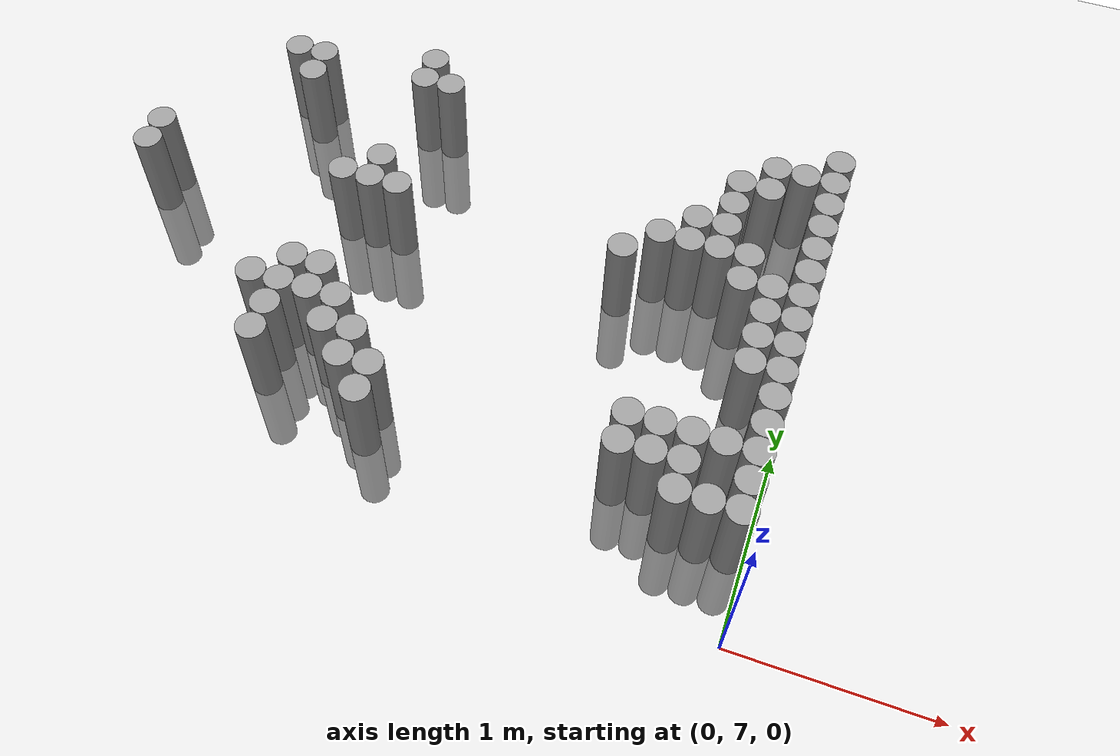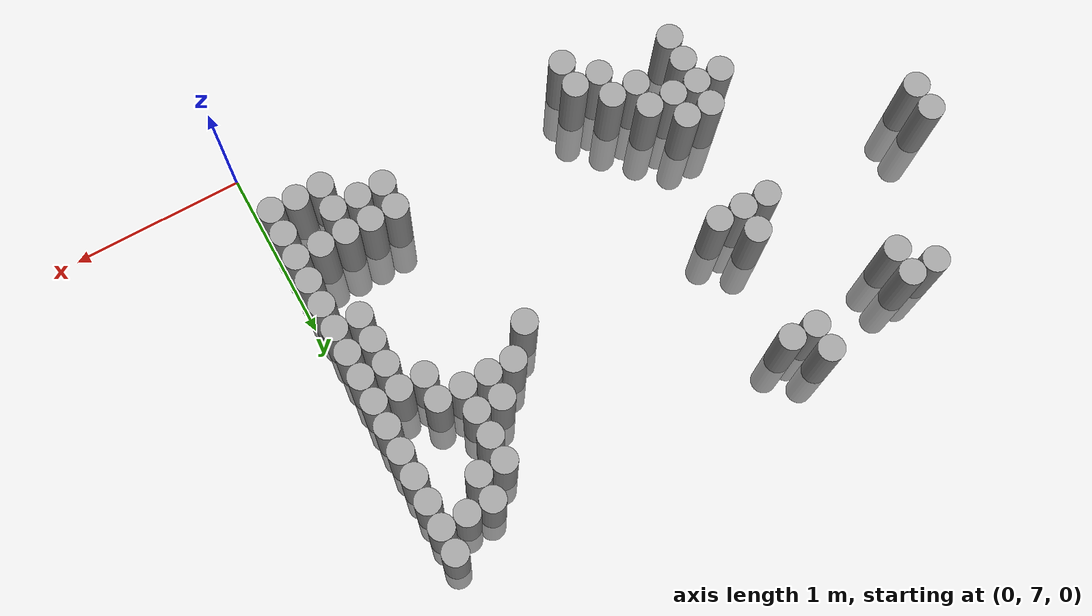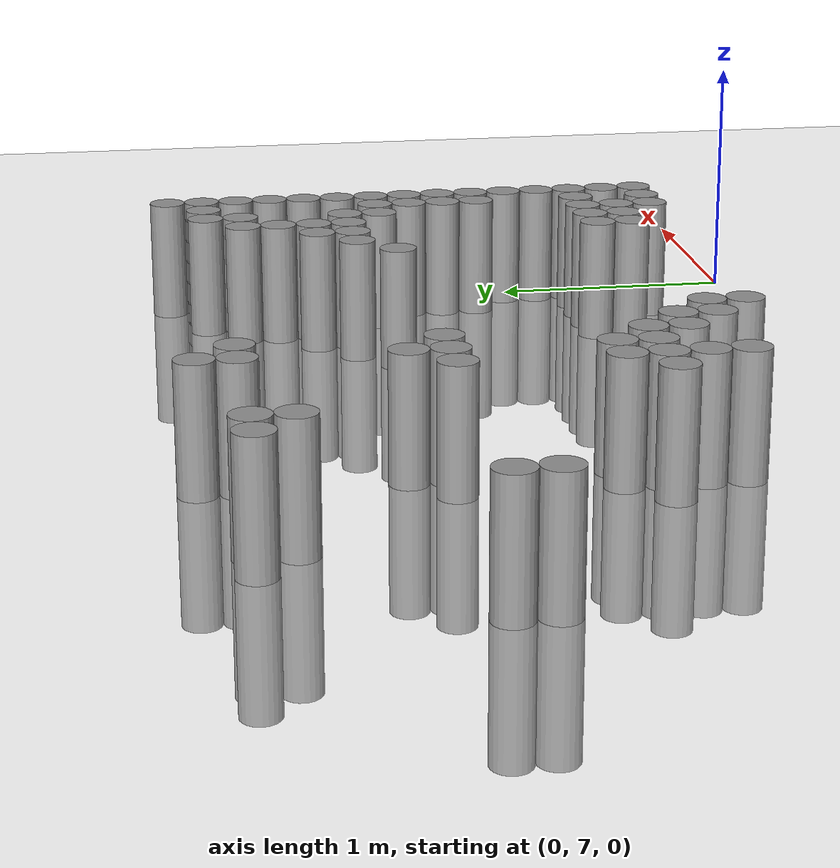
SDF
<sdf version="1.6">
 <world name="default">
  <model name="ground_plane">
   <static>1</static>
   <link name="link">
    <collision name="collision">
     <geometry><plane><normal>0 0 1</normal><size>100 100</size></plane></geometry>
     <surface><friction><ode><mu>100</mu><mu2>50</mu2></ode></friction></surface>
    </collision>
    <visual name="visual">
     <cast_shadows>0</cast_shadows>
     <geometry><plane><normal>0 0 1</normal><size>100 100</size></plane></geometry>
     <material>
      <script><uri>file://media/materials/scripts/gazebo.material</uri><name>Gazebo/Grey</name></script>
     </material>
    </visual>
   </link>
  </model>
  <model name="unit_cylinder_180">
   <pose>-3.525000 8.475000 0.000000 0.000000 0.000000 0.000000</pose>
   <link name="link">
    <inertial>
     <mass>1</mass>
     <inertia><ixx>0.145833</ixx><ixy>0</ixy><ixz>0</ixz><iyy>0.145833</iyy><iyz>0</iyz><izz>0.125</izz></inertia>
    </inertial>
    <collision name="collision">
     <geometry><cylinder><radius>0.075000</radius><length>1</length></cylinder></geometry>
    </collision>
    <visual name="visual">
     <geometry><cylinder><radius>0.075000</radius><length>1</length></cylinder></geometry>
     <material>
      <script><name>Gazebo/Grey</name><uri>file://media/materials/scripts/gazebo.material</uri></script>
     </material>
    </visual>
   </link>
  </model>
  <model name="unit_cylinder_181">
   <pose>-3.525000 8.625000 0.000000 0.000000 0.000000 0.000000</pose>
   <link name="link">
    <inertial>
     <mass>1</mass>
     <inertia><ixx>0.145833</ixx><ixy>0</ixy><ixz>0</ixz><iyy>0.145833</iyy><iyz>0</iyz><izz>0.125</izz></inertia>
    </inertial>
    <collision name="collision">
     <geometry><cylinder><radius>0.075000</radius><length>1</length></cylinder></geometry>
    </collision>
    <visual name="visual">
     <geometry><cylinder><radius>0.075000</radius><length>1</length></cylinder></geometry>
     <material>
      <script><name>Gazebo/Grey</name><uri>file://media/materials/scripts/gazebo.material</uri></script>
     </material>
    </visual>
   </link>
  </model>
  <model name="unit_cylinder_197">
   <pose>-3.075000 9.375000 0.000000 0.000000 0.000000 0.000000</pose>
   <link name="link">
    <inertial>
     <mass>1</mass>
     <inertia><ixx>0.145833</ixx><ixy>0</ixy><ixz>0</ixz><iyy>0.145833</iyy><iyz>0</iyz><izz>0.125</izz></inertia>
    </inertial>
    <collision name="collision">
     <geometry><cylinder><radius>0.075000</radius><length>1</length></cylinder></geometry>
    </collision>
    <visual name="visual">
     <geometry><cylinder><radius>0.075000</radius><length>1</length></cylinder></geometry>
     <material>
      <script><name>Gazebo/Grey</name><uri>file://media/materials/scripts/gazebo.material</uri></script>
     </material>
    </visual>
   </link>
  </model>
  <model name="unit_cylinder_206">
   <pose>-2.925000 9.225000 0.000000 0.000000 0.000000 0.000000</pose>
   <link name="link">
    <inertial>
     <mass>1</mass>
     <inertia><ixx>0.145833</ixx><ixy>0</ixy><ixz>0</ixz><iyy>0.145833</iyy><iyz>0</iyz><izz>0.125</izz></inertia>
    </inertial>
    <collision name="collision">
     <geometry><cylinder><radius>0.075000</radius><length>1</length></cylinder></geometry>
    </collision>
    <visual name="visual">
     <geometry><cylinder><radius>0.075000</radius><length>1</length></cylinder></geometry>
     <material>
      <script><name>Gazebo/Grey</name><uri>file://media/materials/scripts/gazebo.material</uri></script>
     </material>
    </visual>
   </link>
  </model>
  <model name="unit_cylinder_207">
   <pose>-2.925000 9.375000 0.000000 0.000000 0.000000 0.000000</pose>
   <link name="link">
    <inertial>
     <mass>1</mass>
     <inertia><ixx>0.145833</ixx><ixy>0</ixy><ixz>0</ixz><iyy>0.145833</iyy><iyz>0</iyz><izz>0.125</izz></inertia>
    </inertial>
    <collision name="collision">
     <geometry><cylinder><radius>0.075000</radius><length>1</length></cylinder></geometry>
    </collision>
    <visual name="visual">
     <geometry><cylinder><radius>0.075000</radius><length>1</length></cylinder></geometry>
     <material>
      <script><name>Gazebo/Grey</name><uri>file://media/materials/scripts/gazebo.material</uri></script>
     </material>
    </visual>
   </link>
  </model>
  <model name="unit_cylinder_219">
   <pose>-2.625000 7.875000 0.000000 0.000000 0.000000 0.000000</pose>
   <link name="link">
    <inertial>
     <mass>1</mass>
     <inertia><ixx>0.145833</ixx><ixy>0</ixy><ixz>0</ixz><iyy>0.145833</iyy><iyz>0</iyz><izz>0.125</izz></inertia>
    </inertial>
    <collision name="collision">
     <geometry><cylinder><radius>0.075000</radius><length>1</length></cylinder></geometry>
    </collision>
    <visual name="visual">
     <geometry><cylinder><radius>0.075000</radius><length>1</length></cylinder></geometry>
     <material>
      <script><name>Gazebo/Grey</name><uri>file://media/materials/scripts/gazebo.material</uri></script>
     </material>
    </visual>
   </link>
  </model>
  <model name="unit_cylinder_224">
   <pose>-2.475000 7.575000 0.000000 0.000000 0.000000 0.000000</pose>
   <link name="link">
    <inertial>
     <mass>1</mass>
     <inertia><ixx>0.145833</ixx><ixy>0</ixy><ixz>0</ixz><iyy>0.145833</iyy><iyz>0</iyz><izz>0.125</izz></inertia>
    </inertial>
    <collision name="collision">
     <geometry><cylinder><radius>0.075000</radius><length>1</length></cylinder></geometry>
    </collision>
    <visual name="visual">
     <geometry><cylinder><radius>0.075000</radius><length>1</length></cylinder></geometry>
     <material>
      <script><name>Gazebo/Grey</name><uri>file://media/materials/scripts/gazebo.material</uri></script>
     </material>
    </visual>
   </link>
  </model>
  <model name="unit_cylinder_225">
   <pose>-2.475000 7.725000 0.000000 0.000000 0.000000 0.000000</pose>
   <link name="link">
    <inertial>
     <mass>1</mass>
     <inertia><ixx>0.145833</ixx><ixy>0</ixy><ixz>0</ixz><iyy>0.145833</iyy><iyz>0</iyz><izz>0.125</izz></inertia>
    </inertial>
    <collision name="collision">
     <geometry><cylinder><radius>0.075000</radius><length>1</length></cylinder></geometry>
    </collision>
    <visual name="visual">
     <geometry><cylinder><radius>0.075000</radius><length>1</length></cylinder></geometry>
     <material>
      <script><name>Gazebo/Grey</name><uri>file://media/materials/scripts/gazebo.material</uri></script>
     </material>
    </visual>
   </link>
  </model>
  <model name="unit_cylinder_226">
   <pose>-2.475000 7.875000 0.000000 0.000000 0.000000 0.000000</pose>
   <link name="link">
    <inertial>
     <mass>1</mass>
     <inertia><ixx>0.145833</ixx><ixy>0</ixy><ixz>0</ixz><iyy>0.145833</iyy><iyz>0</iyz><izz>0.125</izz></inertia>
    </inertial>
    <collision name="collision">
     <geometry><cylinder><radius>0.075000</radius><length>1</length></cylinder></geometry>
    </collision>
    <visual name="visual">
     <geometry><cylinder><radius>0.075000</radius><length>1</length></cylinder></geometry>
     <material>
      <script><name>Gazebo/Grey</name><uri>file://media/materials/scripts/gazebo.material</uri></script>
     </material>
    </visual>
   </link>
  </model>
  <model name="unit_cylinder_227">
   <pose>-2.475000 8.025000 0.000000 0.000000 0.000000 0.000000</pose>
   <link name="link">
    <inertial>
     <mass>1</mass>
     <inertia><ixx>0.145833</ixx><ixy>0</ixy><ixz>0</ixz><iyy>0.145833</iyy><iyz>0</iyz><izz>0.125</izz></inertia>
    </inertial>
    <collision name="collision">
     <geometry><cylinder><radius>0.075000</radius><length>1</length></cylinder></geometry>
    </collision>
    <visual name="visual">
     <geometry><cylinder><radius>0.075000</radius><length>1</length></cylinder></geometry>
     <material>
      <script><name>Gazebo/Grey</name><uri>file://media/materials/scripts/gazebo.material</uri></script>
     </material>
    </visual>
   </link>
  </model>
  <model name="unit_cylinder_228">
   <pose>-2.475000 8.625000 0.000000 0.000000 0.000000 0.000000</pose>
   <link name="link">
    <inertial>
     <mass>1</mass>
     <inertia><ixx>0.145833</ixx><ixy>0</ixy><ixz>0</ixz><iyy>0.145833</iyy><iyz>0</iyz><izz>0.125</izz></inertia>
    </inertial>
    <collision name="collision">
     <geometry><cylinder><radius>0.075000</radius><length>1</length></cylinder></geometry>
    </collision>
    <visual name="visual">
     <geometry><cylinder><radius>0.075000</radius><length>1</length></cylinder></geometry>
     <material>
      <script><name>Gazebo/Grey</name><uri>file://media/materials/scripts/gazebo.material</uri></script>
     </material>
    </visual>
   </link>
  </model>
  <model name="unit_cylinder_230">
   <pose>-2.325000 7.875000 0.000000 0.000000 0.000000 0.000000</pose>
   <link name="link">
    <inertial>
     <mass>1</mass>
     <inertia><ixx>0.145833</ixx><ixy>0</ixy><ixz>0</ixz><iyy>0.145833</iyy><iyz>0</iyz><izz>0.125</izz></inertia>
    </inertial>
    <collision name="collision">
     <geometry><cylinder><radius>0.075000</radius><length>1</length></cylinder></geometry>
    </collision>
    <visual name="visual">
     <geometry><cylinder><radius>0.075000</radius><length>1</length></cylinder></geometry>
     <material>
      <script><name>Gazebo/Grey</name><uri>file://media/materials/scripts/gazebo.material</uri></script>
     </material>
    </visual>
   </link>
  </model>
  <model name="unit_cylinder_231">
   <pose>-2.325000 8.025000 0.000000 0.000000 0.000000 0.000000</pose>
   <link name="link">
    <inertial>
     <mass>1</mass>
     <inertia><ixx>0.145833</ixx><ixy>0</ixy><ixz>0</ixz><iyy>0.145833</iyy><iyz>0</iyz><izz>0.125</izz></inertia>
    </inertial>
    <collision name="collision">
     <geometry><cylinder><radius>0.075000</radius><length>1</length></cylinder></geometry>
    </collision>
    <visual name="visual">
     <geometry><cylinder><radius>0.075000</radius><length>1</length></cylinder></geometry>
     <material>
      <script><name>Gazebo/Grey</name><uri>file://media/materials/scripts/gazebo.material</uri></script>
     </material>
    </visual>
   </link>
  </model>
  <model name="unit_cylinder_232">
   <pose>-2.325000 8.625000 0.000000 0.000000 0.000000 0.000000</pose>
   <link name="link">
    <inertial>
     <mass>1</mass>
     <inertia><ixx>0.145833</ixx><ixy>0</ixy><ixz>0</ixz><iyy>0.145833</iyy><iyz>0</iyz><izz>0.125</izz></inertia>
    </inertial>
    <collision name="collision">
     <geometry><cylinder><radius>0.075000</radius><length>1</length></cylinder></geometry>
    </collision>
    <visual name="visual">
     <geometry><cylinder><radius>0.075000</radius><length>1</length></cylinder></geometry>
     <material>
      <script><name>Gazebo/Grey</name><uri>file://media/materials/scripts/gazebo.material</uri></script>
     </material>
    </visual>
   </link>
  </model>
  <model name="unit_cylinder_233">
   <pose>-2.325000 8.775000 0.000000 0.000000 0.000000 0.000000</pose>
   <link name="link">
    <inertial>
     <mass>1</mass>
     <inertia><ixx>0.145833</ixx><ixy>0</ixy><ixz>0</ixz><iyy>0.145833</iyy><iyz>0</iyz><izz>0.125</izz></inertia>
    </inertial>
    <collision name="collision">
     <geometry><cylinder><radius>0.075000</radius><length>1</length></cylinder></geometry>
    </collision>
    <visual name="visual">
     <geometry><cylinder><radius>0.075000</radius><length>1</length></cylinder></geometry>
     <material>
      <script><name>Gazebo/Grey</name><uri>file://media/materials/scripts/gazebo.material</uri></script>
     </material>
    </visual>
   </link>
  </model>
  <model name="unit_cylinder_234">
   <pose>-2.325000 9.375000 0.000000 0.000000 0.000000 0.000000</pose>
   <link name="link">
    <inertial>
     <mass>1</mass>
     <inertia><ixx>0.145833</ixx><ixy>0</ixy><ixz>0</ixz><iyy>0.145833</iyy><iyz>0</iyz><izz>0.125</izz></inertia>
    </inertial>
    <collision name="collision">
     <geometry><cylinder><radius>0.075000</radius><length>1</length></cylinder></geometry>
    </collision>
    <visual name="visual">
     <geometry><cylinder><radius>0.075000</radius><length>1</length></cylinder></geometry>
     <material>
      <script><name>Gazebo/Grey</name><uri>file://media/materials/scripts/gazebo.material</uri></script>
     </material>
    </visual>
   </link>
  </model>
  <model name="unit_cylinder_235">
   <pose>-2.325000 9.525000 0.000000 0.000000 0.000000 0.000000</pose>
   <link name="link">
    <inertial>
     <mass>1</mass>
     <inertia><ixx>0.145833</ixx><ixy>0</ixy><ixz>0</ixz><iyy>0.145833</iyy><iyz>0</iyz><izz>0.125</izz></inertia>
    </inertial>
    <collision name="collision">
     <geometry><cylinder><radius>0.075000</radius><length>1</length></cylinder></geometry>
    </collision>
    <visual name="visual">
     <geometry><cylinder><radius>0.075000</radius><length>1</length></cylinder></geometry>
     <material>
      <script><name>Gazebo/Grey</name><uri>file://media/materials/scripts/gazebo.material</uri></script>
     </material>
    </visual>
   </link>
  </model>
  <model name="unit_cylinder_238">
   <pose>-2.175000 7.725000 0.000000 0.000000 0.000000 0.000000</pose>
   <link name="link">
    <inertial>
     <mass>1</mass>
     <inertia><ixx>0.145833</ixx><ixy>0</ixy><ixz>0</ixz><iyy>0.145833</iyy><iyz>0</iyz><izz>0.125</izz></inertia>
    </inertial>
    <collision name="collision">
     <geometry><cylinder><radius>0.075000</radius><length>1</length></cylinder></geometry>
    </collision>
    <visual name="visual">
     <geometry><cylinder><radius>0.075000</radius><length>1</length></cylinder></geometry>
     <material>
      <script><name>Gazebo/Grey</name><uri>file://media/materials/scripts/gazebo.material</uri></script>
     </material>
    </visual>
   </link>
  </model>
  <model name="unit_cylinder_239">
   <pose>-2.175000 7.875000 0.000000 0.000000 0.000000 0.000000</pose>
   <link name="link">
    <inertial>
     <mass>1</mass>
     <inertia><ixx>0.145833</ixx><ixy>0</ixy><ixz>0</ixz><iyy>0.145833</iyy><iyz>0</iyz><izz>0.125</izz></inertia>
    </inertial>
    <collision name="collision">
     <geometry><cylinder><radius>0.075000</radius><length>1</length></cylinder></geometry>
    </collision>
    <visual name="visual">
     <geometry><cylinder><radius>0.075000</radius><length>1</length></cylinder></geometry>
     <material>
      <script><name>Gazebo/Grey</name><uri>file://media/materials/scripts/gazebo.material</uri></script>
     </material>
    </visual>
   </link>
  </model>
  <model name="unit_cylinder_240">
   <pose>-2.175000 8.625000 0.000000 0.000000 0.000000 0.000000</pose>
   <link name="link">
    <inertial>
     <mass>1</mass>
     <inertia><ixx>0.145833</ixx><ixy>0</ixy><ixz>0</ixz><iyy>0.145833</iyy><iyz>0</iyz><izz>0.125</izz></inertia>
    </inertial>
    <collision name="collision">
     <geometry><cylinder><radius>0.075000</radius><length>1</length></cylinder></geometry>
    </collision>
    <visual name="visual">
     <geometry><cylinder><radius>0.075000</radius><length>1</length></cylinder></geometry>
     <material>
      <script><name>Gazebo/Grey</name><uri>file://media/materials/scripts/gazebo.material</uri></script>
     </material>
    </visual>
   </link>
  </model>
  <model name="unit_cylinder_241">
   <pose>-2.175000 9.375000 0.000000 0.000000 0.000000 0.000000</pose>
   <link name="link">
    <inertial>
     <mass>1</mass>
     <inertia><ixx>0.145833</ixx><ixy>0</ixy><ixz>0</ixz><iyy>0.145833</iyy><iyz>0</iyz><izz>0.125</izz></inertia>
    </inertial>
    <collision name="collision">
     <geometry><cylinder><radius>0.075000</radius><length>1</length></cylinder></geometry>
    </collision>
    <visual name="visual">
     <geometry><cylinder><radius>0.075000</radius><length>1</length></cylinder></geometry>
     <material>
      <script><name>Gazebo/Grey</name><uri>file://media/materials/scripts/gazebo.material</uri></script>
     </material>
    </visual>
   </link>
  </model>
  <model name="unit_cylinder_243">
   <pose>-2.025000 7.575000 0.000000 0.000000 0.000000 0.000000</pose>
   <link name="link">
    <inertial>
     <mass>1</mass>
     <inertia><ixx>0.145833</ixx><ixy>0</ixy><ixz>0</ixz><iyy>0.145833</iyy><iyz>0</iyz><izz>0.125</izz></inertia>
    </inertial>
    <collision name="collision">
     <geometry><cylinder><radius>0.075000</radius><length>1</length></cylinder></geometry>
    </collision>
    <visual name="visual">
     <geometry><cylinder><radius>0.075000</radius><length>1</length></cylinder></geometry>
     <material>
      <script><name>Gazebo/Grey</name><uri>file://media/materials/scripts/gazebo.material</uri></script>
     </material>
    </visual>
   </link>
  </model>
  <model name="unit_cylinder_244">
   <pose>-2.025000 7.725000 0.000000 0.000000 0.000000 0.000000</pose>
   <link name="link">
    <inertial>
     <mass>1</mass>
     <inertia><ixx>0.145833</ixx><ixy>0</ixy><ixz>0</ixz><iyy>0.145833</iyy><iyz>0</iyz><izz>0.125</izz></inertia>
    </inertial>
    <collision name="collision">
     <geometry><cylinder><radius>0.075000</radius><length>1</length></cylinder></geometry>
    </collision>
    <visual name="visual">
     <geometry><cylinder><radius>0.075000</radius><length>1</length></cylinder></geometry>
     <material>
      <script><name>Gazebo/Grey</name><uri>file://media/materials/scripts/gazebo.material</uri></script>
     </material>
    </visual>
   </link>
  </model>
  <model name="unit_cylinder_245">
   <pose>-1.875000 7.425000 0.000000 0.000000 0.000000 0.000000</pose>
   <link name="link">
    <inertial>
     <mass>1</mass>
     <inertia><ixx>0.145833</ixx><ixy>0</ixy><ixz>0</ixz><iyy>0.145833</iyy><iyz>0</iyz><izz>0.125</izz></inertia>
    </inertial>
    <collision name="collision">
     <geometry><cylinder><radius>0.075000</radius><length>1</length></cylinder></geometry>
    </collision>
    <visual name="visual">
     <geometry><cylinder><radius>0.075000</radius><length>1</length></cylinder></geometry>
     <material>
      <script><name>Gazebo/Grey</name><uri>file://media/materials/scripts/gazebo.material</uri></script>
     </material>
    </visual>
   </link>
  </model>
  <model name="unit_cylinder_246">
   <pose>-1.875000 7.575000 0.000000 0.000000 0.000000 0.000000</pose>
   <link name="link">
    <inertial>
     <mass>1</mass>
     <inertia><ixx>0.145833</ixx><ixy>0</ixy><ixz>0</ixz><iyy>0.145833</iyy><iyz>0</iyz><izz>0.125</izz></inertia>
    </inertial>
    <collision name="collision">
     <geometry><cylinder><radius>0.075000</radius><length>1</length></cylinder></geometry>
    </collision>
    <visual name="visual">
     <geometry><cylinder><radius>0.075000</radius><length>1</length></cylinder></geometry>
     <material>
      <script><name>Gazebo/Grey</name><uri>file://media/materials/scripts/gazebo.material</uri></script>
     </material>
    </visual>
   </link>
  </model>
  <model name="unit_cylinder_255">
   <pose>-0.975000 8.625000 0.000000 0.000000 0.000000 0.000000</pose>
   <link name="link">
    <inertial>
     <mass>1</mass>
     <inertia><ixx>0.145833</ixx><ixy>0</ixy><ixz>0</ixz><iyy>0.145833</iyy><iyz>0</iyz><izz>0.125</izz></inertia>
    </inertial>
    <collision name="collision">
     <geometry><cylinder><radius>0.075000</radius><length>1</length></cylinder></geometry>
    </collision>
    <visual name="visual">
     <geometry><cylinder><radius>0.075000</radius><length>1</length></cylinder></geometry>
     <material>
      <script><name>Gazebo/Grey</name><uri>file://media/materials/scripts/gazebo.material</uri></script>
     </material>
    </visual>
   </link>
  </model>
  <model name="unit_cylinder_257">
   <pose>-0.825000 8.775000 0.000000 0.000000 0.000000 0.000000</pose>
   <link name="link">
    <inertial>
     <mass>1</mass>
     <inertia><ixx>0.145833</ixx><ixy>0</ixy><ixz>0</ixz><iyy>0.145833</iyy><iyz>0</iyz><izz>0.125</izz></inertia>
    </inertial>
    <collision name="collision">
     <geometry><cylinder><radius>0.075000</radius><length>1</length></cylinder></geometry>
    </collision>
    <visual name="visual">
     <geometry><cylinder><radius>0.075000</radius><length>1</length></cylinder></geometry>
     <material>
      <script><name>Gazebo/Grey</name><uri>file://media/materials/scripts/gazebo.material</uri></script>
     </material>
    </visual>
   </link>
  </model>
  <model name="unit_cylinder_259">
   <pose>-0.675000 7.575000 0.000000 0.000000 0.000000 0.000000</pose>
   <link name="link">
    <inertial>
     <mass>1</mass>
     <inertia><ixx>0.145833</ixx><ixy>0</ixy><ixz>0</ixz><iyy>0.145833</iyy><iyz>0</iyz><izz>0.125</izz></inertia>
    </inertial>
    <collision name="collision">
     <geometry><cylinder><radius>0.075000</radius><length>1</length></cylinder></geometry>
    </collision>
    <visual name="visual">
     <geometry><cylinder><radius>0.075000</radius><length>1</length></cylinder></geometry>
     <material>
      <script><name>Gazebo/Grey</name><uri>file://media/materials/scripts/gazebo.material</uri></script>
     </material>
    </visual>
   </link>
  </model>
  <model name="unit_cylinder_260">
   <pose>-0.675000 7.725000 0.000000 0.000000 0.000000 0.000000</pose>
   <link name="link">
    <inertial>
     <mass>1</mass>
     <inertia><ixx>0.145833</ixx><ixy>0</ixy><ixz>0</ixz><iyy>0.145833</iyy><iyz>0</iyz><izz>0.125</izz></inertia>
    </inertial>
    <collision name="collision">
     <geometry><cylinder><radius>0.075000</radius><length>1</length></cylinder></geometry>
    </collision>
    <visual name="visual">
     <geometry><cylinder><radius>0.075000</radius><length>1</length></cylinder></geometry>
     <material>
      <script><name>Gazebo/Grey</name><uri>file://media/materials/scripts/gazebo.material</uri></script>
     </material>
    </visual>
   </link>
  </model>
  <model name="unit_cylinder_261">
   <pose>-0.675000 8.775000 0.000000 0.000000 0.000000 0.000000</pose>
   <link name="link">
    <inertial>
     <mass>1</mass>
     <inertia><ixx>0.145833</ixx><ixy>0</ixy><ixz>0</ixz><iyy>0.145833</iyy><iyz>0</iyz><izz>0.125</izz></inertia>
    </inertial>
    <collision name="collision">
     <geometry><cylinder><radius>0.075000</radius><length>1</length></cylinder></geometry>
    </collision>
    <visual name="visual">
     <geometry><cylinder><radius>0.075000</radius><length>1</length></cylinder></geometry>
     <material>
      <script><name>Gazebo/Grey</name><uri>file://media/materials/scripts/gazebo.material</uri></script>
     </material>
    </visual>
   </link>
  </model>
  <model name="unit_cylinder_262">
   <pose>-0.675000 8.925000 0.000000 0.000000 0.000000 0.000000</pose>
   <link name="link">
    <inertial>
     <mass>1</mass>
     <inertia><ixx>0.145833</ixx><ixy>0</ixy><ixz>0</ixz><iyy>0.145833</iyy><iyz>0</iyz><izz>0.125</izz></inertia>
    </inertial>
    <collision name="collision">
     <geometry><cylinder><radius>0.075000</radius><length>1</length></cylinder></geometry>
    </collision>
    <visual name="visual">
     <geometry><cylinder><radius>0.075000</radius><length>1</length></cylinder></geometry>
     <material>
      <script><name>Gazebo/Grey</name><uri>file://media/materials/scripts/gazebo.material</uri></script>
     </material>
    </visual>
   </link>
  </model>
  <model name="unit_cylinder_267">
   <pose>-0.525000 7.575000 0.000000 0.000000 0.000000 0.000000</pose>
   <link name="link">
    <inertial>
     <mass>1</mass>
     <inertia><ixx>0.145833</ixx><ixy>0</ixy><ixz>0</ixz><iyy>0.145833</iyy><iyz>0</iyz><izz>0.125</izz></inertia>
    </inertial>
    <collision name="collision">
     <geometry><cylinder><radius>0.075000</radius><length>1</length></cylinder></geometry>
    </collision>
    <visual name="visual">
     <geometry><cylinder><radius>0.075000</radius><length>1</length></cylinder></geometry>
     <material>
      <script><name>Gazebo/Grey</name><uri>file://media/materials/scripts/gazebo.material</uri></script>
     </material>
    </visual>
   </link>
  </model>
  <model name="unit_cylinder_268">
   <pose>-0.525000 7.725000 0.000000 0.000000 0.000000 0.000000</pose>
   <link name="link">
    <inertial>
     <mass>1</mass>
     <inertia><ixx>0.145833</ixx><ixy>0</ixy><ixz>0</ixz><iyy>0.145833</iyy><iyz>0</iyz><izz>0.125</izz></inertia>
    </inertial>
    <collision name="collision">
     <geometry><cylinder><radius>0.075000</radius><length>1</length></cylinder></geometry>
    </collision>
    <visual name="visual">
     <geometry><cylinder><radius>0.075000</radius><length>1</length></cylinder></geometry>
     <material>
      <script><name>Gazebo/Grey</name><uri>file://media/materials/scripts/gazebo.material</uri></script>
     </material>
    </visual>
   </link>
  </model>
  <model name="unit_cylinder_269">
   <pose>-0.525000 8.775000 0.000000 0.000000 0.000000 0.000000</pose>
   <link name="link">
    <inertial>
     <mass>1</mass>
     <inertia><ixx>0.145833</ixx><ixy>0</ixy><ixz>0</ixz><iyy>0.145833</iyy><iyz>0</iyz><izz>0.125</izz></inertia>
    </inertial>
    <collision name="collision">
     <geometry><cylinder><radius>0.075000</radius><length>1</length></cylinder></geometry>
    </collision>
    <visual name="visual">
     <geometry><cylinder><radius>0.075000</radius><length>1</length></cylinder></geometry>
     <material>
      <script><name>Gazebo/Grey</name><uri>file://media/materials/scripts/gazebo.material</uri></script>
     </material>
    </visual>
   </link>
  </model>
  <model name="unit_cylinder_270">
   <pose>-0.525000 8.925000 0.000000 0.000000 0.000000 0.000000</pose>
   <link name="link">
    <inertial>
     <mass>1</mass>
     <inertia><ixx>0.145833</ixx><ixy>0</ixy><ixz>0</ixz><iyy>0.145833</iyy><iyz>0</iyz><izz>0.125</izz></inertia>
    </inertial>
    <collision name="collision">
     <geometry><cylinder><radius>0.075000</radius><length>1</length></cylinder></geometry>
    </collision>
    <visual name="visual">
     <geometry><cylinder><radius>0.075000</radius><length>1</length></cylinder></geometry>
     <material>
      <script><name>Gazebo/Grey</name><uri>file://media/materials/scripts/gazebo.material</uri></script>
     </material>
    </visual>
   </link>
  </model>
  <model name="unit_cylinder_271">
   <pose>-0.525000 9.075000 0.000000 0.000000 0.000000 0.000000</pose>
   <link name="link">
    <inertial>
     <mass>1</mass>
     <inertia><ixx>0.145833</ixx><ixy>0</ixy><ixz>0</ixz><iyy>0.145833</iyy><iyz>0</iyz><izz>0.125</izz></inertia>
    </inertial>
    <collision name="collision">
     <geometry><cylinder><radius>0.075000</radius><length>1</length></cylinder></geometry>
    </collision>
    <visual name="visual">
     <geometry><cylinder><radius>0.075000</radius><length>1</length></cylinder></geometry>
     <material>
      <script><name>Gazebo/Grey</name><uri>file://media/materials/scripts/gazebo.material</uri></script>
     </material>
    </visual>
   </link>
  </model>
  <model name="unit_cylinder_272">
   <pose>-0.525000 9.225000 0.000000 0.000000 0.000000 0.000000</pose>
   <link name="link">
    <inertial>
     <mass>1</mass>
     <inertia><ixx>0.145833</ixx><ixy>0</ixy><ixz>0</ixz><iyy>0.145833</iyy><iyz>0</iyz><izz>0.125</izz></inertia>
    </inertial>
    <collision name="collision">
     <geometry><cylinder><radius>0.075000</radius><length>1</length></cylinder></geometry>
    </collision>
    <visual name="visual">
     <geometry><cylinder><radius>0.075000</radius><length>1</length></cylinder></geometry>
     <material>
      <script><name>Gazebo/Grey</name><uri>file://media/materials/scripts/gazebo.material</uri></script>
     </material>
    </visual>
   </link>
  </model>
  <model name="unit_cylinder_279">
   <pose>-0.375000 7.425000 0.000000 0.000000 0.000000 0.000000</pose>
   <link name="link">
    <inertial>
     <mass>1</mass>
     <inertia><ixx>0.145833</ixx><ixy>0</ixy><ixz>0</ixz><iyy>0.145833</iyy><iyz>0</iyz><izz>0.125</izz></inertia>
    </inertial>
    <collision name="collision">
     <geometry><cylinder><radius>0.075000</radius><length>1</length></cylinder></geometry>
    </collision>
    <visual name="visual">
     <geometry><cylinder><radius>0.075000</radius><length>1</length></cylinder></geometry>
     <material>
      <script><name>Gazebo/Grey</name><uri>file://media/materials/scripts/gazebo.material</uri></script>
     </material>
    </visual>
   </link>
  </model>
  <model name="unit_cylinder_280">
   <pose>-0.375000 7.575000 0.000000 0.000000 0.000000 0.000000</pose>
   <link name="link">
    <inertial>
     <mass>1</mass>
     <inertia><ixx>0.145833</ixx><ixy>0</ixy><ixz>0</ixz><iyy>0.145833</iyy><iyz>0</iyz><izz>0.125</izz></inertia>
    </inertial>
    <collision name="collision">
     <geometry><cylinder><radius>0.075000</radius><length>1</length></cylinder></geometry>
    </collision>
    <visual name="visual">
     <geometry><cylinder><radius>0.075000</radius><length>1</length></cylinder></geometry>
     <material>
      <script><name>Gazebo/Grey</name><uri>file://media/materials/scripts/gazebo.material</uri></script>
     </material>
    </visual>
   </link>
  </model>
  <model name="unit_cylinder_281">
   <pose>-0.375000 7.725000 0.000000 0.000000 0.000000 0.000000</pose>
   <link name="link">
    <inertial>
     <mass>1</mass>
     <inertia><ixx>0.145833</ixx><ixy>0</ixy><ixz>0</ixz><iyy>0.145833</iyy><iyz>0</iyz><izz>0.125</izz></inertia>
    </inertial>
    <collision name="collision">
     <geometry><cylinder><radius>0.075000</radius><length>1</length></cylinder></geometry>
    </collision>
    <visual name="visual">
     <geometry><cylinder><radius>0.075000</radius><length>1</length></cylinder></geometry>
     <material>
      <script><name>Gazebo/Grey</name><uri>file://media/materials/scripts/gazebo.material</uri></script>
     </material>
    </visual>
   </link>
  </model>
  <model name="unit_cylinder_282">
   <pose>-0.375000 8.625000 0.000000 0.000000 0.000000 0.000000</pose>
   <link name="link">
    <inertial>
     <mass>1</mass>
     <inertia><ixx>0.145833</ixx><ixy>0</ixy><ixz>0</ixz><iyy>0.145833</iyy><iyz>0</iyz><izz>0.125</izz></inertia>
    </inertial>
    <collision name="collision">
     <geometry><cylinder><radius>0.075000</radius><length>1</length></cylinder></geometry>
    </collision>
    <visual name="visual">
     <geometry><cylinder><radius>0.075000</radius><length>1</length></cylinder></geometry>
     <material>
      <script><name>Gazebo/Grey</name><uri>file://media/materials/scripts/gazebo.material</uri></script>
     </material>
    </visual>
   </link>
  </model>
  <model name="unit_cylinder_283">
   <pose>-0.375000 8.775000 0.000000 0.000000 0.000000 0.000000</pose>
   <link name="link">
    <inertial>
     <mass>1</mass>
     <inertia><ixx>0.145833</ixx><ixy>0</ixy><ixz>0</ixz><iyy>0.145833</iyy><iyz>0</iyz><izz>0.125</izz></inertia>
    </inertial>
    <collision name="collision">
     <geometry><cylinder><radius>0.075000</radius><length>1</length></cylinder></geometry>
    </collision>
    <visual name="visual">
     <geometry><cylinder><radius>0.075000</radius><length>1</length></cylinder></geometry>
     <material>
      <script><name>Gazebo/Grey</name><uri>file://media/materials/scripts/gazebo.material</uri></script>
     </material>
    </visual>
   </link>
  </model>
  <model name="unit_cylinder_284">
   <pose>-0.375000 9.225000 0.000000 0.000000 0.000000 0.000000</pose>
   <link name="link">
    <inertial>
     <mass>1</mass>
     <inertia><ixx>0.145833</ixx><ixy>0</ixy><ixz>0</ixz><iyy>0.145833</iyy><iyz>0</iyz><izz>0.125</izz></inertia>
    </inertial>
    <collision name="collision">
     <geometry><cylinder><radius>0.075000</radius><length>1</length></cylinder></geometry>
    </collision>
    <visual name="visual">
     <geometry><cylinder><radius>0.075000</radius><length>1</length></cylinder></geometry>
     <material>
      <script><name>Gazebo/Grey</name><uri>file://media/materials/scripts/gazebo.material</uri></script>
     </material>
    </visual>
   </link>
  </model>
  <model name="unit_cylinder_285">
   <pose>-0.375000 9.375000 0.000000 0.000000 0.000000 0.000000</pose>
   <link name="link">
    <inertial>
     <mass>1</mass>
     <inertia><ixx>0.145833</ixx><ixy>0</ixy><ixz>0</ixz><iyy>0.145833</iyy><iyz>0</iyz><izz>0.125</izz></inertia>
    </inertial>
    <collision name="collision">
     <geometry><cylinder><radius>0.075000</radius><length>1</length></cylinder></geometry>
    </collision>
    <visual name="visual">
     <geometry><cylinder><radius>0.075000</radius><length>1</length></cylinder></geometry>
     <material>
      <script><name>Gazebo/Grey</name><uri>file://media/materials/scripts/gazebo.material</uri></script>
     </material>
    </visual>
   </link>
  </model>
  <model name="unit_cylinder_292">
   <pose>-0.225000 7.425000 0.000000 0.000000 0.000000 0.000000</pose>
   <link name="link">
    <inertial>
     <mass>1</mass>
     <inertia><ixx>0.145833</ixx><ixy>0</ixy><ixz>0</ixz><iyy>0.145833</iyy><iyz>0</iyz><izz>0.125</izz></inertia>
    </inertial>
    <collision name="collision">
     <geometry><cylinder><radius>0.075000</radius><length>1</length></cylinder></geometry>
    </collision>
    <visual name="visual">
     <geometry><cylinder><radius>0.075000</radius><length>1</length></cylinder></geometry>
     <material>
      <script><name>Gazebo/Grey</name><uri>file://media/materials/scripts/gazebo.material</uri></script>
     </material>
    </visual>
   </link>
  </model>
  <model name="unit_cylinder_293">
   <pose>-0.225000 7.725000 0.000000 0.000000 0.000000 0.000000</pose>
   <link name="link">
    <inertial>
     <mass>1</mass>
     <inertia><ixx>0.145833</ixx><ixy>0</ixy><ixz>0</ixz><iyy>0.145833</iyy><iyz>0</iyz><izz>0.125</izz></inertia>
    </inertial>
    <collision name="collision">
     <geometry><cylinder><radius>0.075000</radius><length>1</length></cylinder></geometry>
    </collision>
    <visual name="visual">
     <geometry><cylinder><radius>0.075000</radius><length>1</length></cylinder></geometry>
     <material>
      <script><name>Gazebo/Grey</name><uri>file://media/materials/scripts/gazebo.material</uri></script>
     </material>
    </visual>
   </link>
  </model>
  <model name="unit_cylinder_294">
   <pose>-0.225000 8.175000 0.000000 0.000000 0.000000 0.000000</pose>
   <link name="link">
    <inertial>
     <mass>1</mass>
     <inertia><ixx>0.145833</ixx><ixy>0</ixy><ixz>0</ixz><iyy>0.145833</iyy><iyz>0</iyz><izz>0.125</izz></inertia>
    </inertial>
    <collision name="collision">
     <geometry><cylinder><radius>0.075000</radius><length>1</length></cylinder></geometry>
    </collision>
    <visual name="visual">
     <geometry><cylinder><radius>0.075000</radius><length>1</length></cylinder></geometry>
     <material>
      <script><name>Gazebo/Grey</name><uri>file://media/materials/scripts/gazebo.material</uri></script>
     </material>
    </visual>
   </link>
  </model>
  <model name="unit_cylinder_295">
   <pose>-0.225000 8.325000 0.000000 0.000000 0.000000 0.000000</pose>
   <link name="link">
    <inertial>
     <mass>1</mass>
     <inertia><ixx>0.145833</ixx><ixy>0</ixy><ixz>0</ixz><iyy>0.145833</iyy><iyz>0</iyz><izz>0.125</izz></inertia>
    </inertial>
    <collision name="collision">
     <geometry><cylinder><radius>0.075000</radius><length>1</length></cylinder></geometry>
    </collision>
    <visual name="visual">
     <geometry><cylinder><radius>0.075000</radius><length>1</length></cylinder></geometry>
     <material>
      <script><name>Gazebo/Grey</name><uri>file://media/materials/scripts/gazebo.material</uri></script>
     </material>
    </visual>
   </link>
  </model>
  <model name="unit_cylinder_296">
   <pose>-0.225000 8.475000 0.000000 0.000000 0.000000 0.000000</pose>
   <link name="link">
    <inertial>
     <mass>1</mass>
     <inertia><ixx>0.145833</ixx><ixy>0</ixy><ixz>0</ixz><iyy>0.145833</iyy><iyz>0</iyz><izz>0.125</izz></inertia>
    </inertial>
    <collision name="collision">
     <geometry><cylinder><radius>0.075000</radius><length>1</length></cylinder></geometry>
    </collision>
    <visual name="visual">
     <geometry><cylinder><radius>0.075000</radius><length>1</length></cylinder></geometry>
     <material>
      <script><name>Gazebo/Grey</name><uri>file://media/materials/scripts/gazebo.material</uri></script>
     </material>
    </visual>
   </link>
  </model>
  <model name="unit_cylinder_297">
   <pose>-0.225000 8.625000 0.000000 0.000000 0.000000 0.000000</pose>
   <link name="link">
    <inertial>
     <mass>1</mass>
     <inertia><ixx>0.145833</ixx><ixy>0</ixy><ixz>0</ixz><iyy>0.145833</iyy><iyz>0</iyz><izz>0.125</izz></inertia>
    </inertial>
    <collision name="collision">
     <geometry><cylinder><radius>0.075000</radius><length>1</length></cylinder></geometry>
    </collision>
    <visual name="visual">
     <geometry><cylinder><radius>0.075000</radius><length>1</length></cylinder></geometry>
     <material>
      <script><name>Gazebo/Grey</name><uri>file://media/materials/scripts/gazebo.material</uri></script>
     </material>
    </visual>
   </link>
  </model>
  <model name="unit_cylinder_298">
   <pose>-0.225000 9.375000 0.000000 0.000000 0.000000 0.000000</pose>
   <link name="link">
    <inertial>
     <mass>1</mass>
     <inertia><ixx>0.145833</ixx><ixy>0</ixy><ixz>0</ixz><iyy>0.145833</iyy><iyz>0</iyz><izz>0.125</izz></inertia>
    </inertial>
    <collision name="collision">
     <geometry><cylinder><radius>0.075000</radius><length>1</length></cylinder></geometry>
    </collision>
    <visual name="visual">
     <geometry><cylinder><radius>0.075000</radius><length>1</length></cylinder></geometry>
     <material>
      <script><name>Gazebo/Grey</name><uri>file://media/materials/scripts/gazebo.material</uri></script>
     </material>
    </visual>
   </link>
  </model>
  <model name="unit_cylinder_314">
   <pose>-0.075000 7.425000 0.000000 0.000000 0.000000 0.000000</pose>
   <link name="link">
    <inertial>
     <mass>1</mass>
     <inertia><ixx>0.145833</ixx><ixy>0</ixy><ixz>0</ixz><iyy>0.145833</iyy><iyz>0</iyz><izz>0.125</izz></inertia>
    </inertial>
    <collision name="collision">
     <geometry><cylinder><radius>0.075000</radius><length>1</length></cylinder></geometry>
    </collision>
    <visual name="visual">
     <geometry><cylinder><radius>0.075000</radius><length>1</length></cylinder></geometry>
     <material>
      <script><name>Gazebo/Grey</name><uri>file://media/materials/scripts/gazebo.material</uri></script>
     </material>
    </visual>
   </link>
  </model>
  <model name="unit_cylinder_315">
   <pose>-0.075000 7.575000 0.000000 0.000000 0.000000 0.000000</pose>
   <link name="link">
    <inertial>
     <mass>1</mass>
     <inertia><ixx>0.145833</ixx><ixy>0</ixy><ixz>0</ixz><iyy>0.145833</iyy><iyz>0</iyz><izz>0.125</izz></inertia>
    </inertial>
    <collision name="collision">
     <geometry><cylinder><radius>0.075000</radius><length>1</length></cylinder></geometry>
    </collision>
    <visual name="visual">
     <geometry><cylinder><radius>0.075000</radius><length>1</length></cylinder></geometry>
     <material>
      <script><name>Gazebo/Grey</name><uri>file://media/materials/scripts/gazebo.material</uri></script>
     </material>
    </visual>
   </link>
  </model>
  <model name="unit_cylinder_316">
   <pose>-0.075000 7.725000 0.000000 0.000000 0.000000 0.000000</pose>
   <link name="link">
    <inertial>
     <mass>1</mass>
     <inertia><ixx>0.145833</ixx><ixy>0</ixy><ixz>0</ixz><iyy>0.145833</iyy><iyz>0</iyz><izz>0.125</izz></inertia>
    </inertial>
    <collision name="collision">
     <geometry><cylinder><radius>0.075000</radius><length>1</length></cylinder></geometry>
    </collision>
    <visual name="visual">
     <geometry><cylinder><radius>0.075000</radius><length>1</length></cylinder></geometry>
     <material>
      <script><name>Gazebo/Grey</name><uri>file://media/materials/scripts/gazebo.material</uri></script>
     </material>
    </visual>
   </link>
  </model>
  <model name="unit_cylinder_317">
   <pose>-0.075000 7.875000 0.000000 0.000000 0.000000 0.000000</pose>
   <link name="link">
    <inertial>
     <mass>1</mass>
     <inertia><ixx>0.145833</ixx><ixy>0</ixy><ixz>0</ixz><iyy>0.145833</iyy><iyz>0</iyz><izz>0.125</izz></inertia>
    </inertial>
    <collision name="collision">
     <geometry><cylinder><radius>0.075000</radius><length>1</length></cylinder></geometry>
    </collision>
    <visual name="visual">
     <geometry><cylinder><radius>0.075000</radius><length>1</length></cylinder></geometry>
     <material>
      <script><name>Gazebo/Grey</name><uri>file://media/materials/scripts/gazebo.material</uri></script>
     </material>
    </visual>
   </link>
  </model>
  <model name="unit_cylinder_318">
   <pose>-0.075000 8.025000 0.000000 0.000000 0.000000 0.000000</pose>
   <link name="link">
    <inertial>
     <mass>1</mass>
     <inertia><ixx>0.145833</ixx><ixy>0</ixy><ixz>0</ixz><iyy>0.145833</iyy><iyz>0</iyz><izz>0.125</izz></inertia>
    </inertial>
    <collision name="collision">
     <geometry><cylinder><radius>0.075000</radius><length>1</length></cylinder></geometry>
    </collision>
    <visual name="visual">
     <geometry><cylinder><radius>0.075000</radius><length>1</length></cylinder></geometry>
     <material>
      <script><name>Gazebo/Grey</name><uri>file://media/materials/scripts/gazebo.material</uri></script>
     </material>
    </visual>
   </link>
  </model>
  <model name="unit_cylinder_319">
   <pose>-0.075000 8.175000 0.000000 0.000000 0.000000 0.000000</pose>
   <link name="link">
    <inertial>
     <mass>1</mass>
     <inertia><ixx>0.145833</ixx><ixy>0</ixy><ixz>0</ixz><iyy>0.145833</iyy><iyz>0</iyz><izz>0.125</izz></inertia>
    </inertial>
    <collision name="collision">
     <geometry><cylinder><radius>0.075000</radius><length>1</length></cylinder></geometry>
    </collision>
    <visual name="visual">
     <geometry><cylinder><radius>0.075000</radius><length>1</length></cylinder></geometry>
     <material>
      <script><name>Gazebo/Grey</name><uri>file://media/materials/scripts/gazebo.material</uri></script>
     </material>
    </visual>
   </link>
  </model>
  <model name="unit_cylinder_320">
   <pose>-0.075000 8.325000 0.000000 0.000000 0.000000 0.000000</pose>
   <link name="link">
    <inertial>
     <mass>1</mass>
     <inertia><ixx>0.145833</ixx><ixy>0</ixy><ixz>0</ixz><iyy>0.145833</iyy><iyz>0</iyz><izz>0.125</izz></inertia>
    </inertial>
    <collision name="collision">
     <geometry><cylinder><radius>0.075000</radius><length>1</length></cylinder></geometry>
    </collision>
    <visual name="visual">
     <geometry><cylinder><radius>0.075000</radius><length>1</length></cylinder></geometry>
     <material>
      <script><name>Gazebo/Grey</name><uri>file://media/materials/scripts/gazebo.material</uri></script>
     </material>
    </visual>
   </link>
  </model>
  <model name="unit_cylinder_321">
   <pose>-0.075000 8.475000 0.000000 0.000000 0.000000 0.000000</pose>
   <link name="link">
    <inertial>
     <mass>1</mass>
     <inertia><ixx>0.145833</ixx><ixy>0</ixy><ixz>0</ixz><iyy>0.145833</iyy><iyz>0</iyz><izz>0.125</izz></inertia>
    </inertial>
    <collision name="collision">
     <geometry><cylinder><radius>0.075000</radius><length>1</length></cylinder></geometry>
    </collision>
    <visual name="visual">
     <geometry><cylinder><radius>0.075000</radius><length>1</length></cylinder></geometry>
     <material>
      <script><name>Gazebo/Grey</name><uri>file://media/materials/scripts/gazebo.material</uri></script>
     </material>
    </visual>
   </link>
  </model>
  <model name="unit_cylinder_322">
   <pose>-0.075000 8.625000 0.000000 0.000000 0.000000 0.000000</pose>
   <link name="link">
    <inertial>
     <mass>1</mass>
     <inertia><ixx>0.145833</ixx><ixy>0</ixy><ixz>0</ixz><iyy>0.145833</iyy><iyz>0</iyz><izz>0.125</izz></inertia>
    </inertial>
    <collision name="collision">
     <geometry><cylinder><radius>0.075000</radius><length>1</length></cylinder></geometry>
    </collision>
    <visual name="visual">
     <geometry><cylinder><radius>0.075000</radius><length>1</length></cylinder></geometry>
     <material>
      <script><name>Gazebo/Grey</name><uri>file://media/materials/scripts/gazebo.material</uri></script>
     </material>
    </visual>
   </link>
  </model>
  <model name="unit_cylinder_323">
   <pose>-0.075000 8.775000 0.000000 0.000000 0.000000 0.000000</pose>
   <link name="link">
    <inertial>
     <mass>1</mass>
     <inertia><ixx>0.145833</ixx><ixy>0</ixy><ixz>0</ixz><iyy>0.145833</iyy><iyz>0</iyz><izz>0.125</izz></inertia>
    </inertial>
    <collision name="collision">
     <geometry><cylinder><radius>0.075000</radius><length>1</length></cylinder></geometry>
    </collision>
    <visual name="visual">
     <geometry><cylinder><radius>0.075000</radius><length>1</length></cylinder></geometry>
     <material>
      <script><name>Gazebo/Grey</name><uri>file://media/materials/scripts/gazebo.material</uri></script>
     </material>
    </visual>
   </link>
  </model>
  <model name="unit_cylinder_324">
   <pose>-0.075000 8.925000 0.000000 0.000000 0.000000 0.000000</pose>
   <link name="link">
    <inertial>
     <mass>1</mass>
     <inertia><ixx>0.145833</ixx><ixy>0</ixy><ixz>0</ixz><iyy>0.145833</iyy><iyz>0</iyz><izz>0.125</izz></inertia>
    </inertial>
    <collision name="collision">
     <geometry><cylinder><radius>0.075000</radius><length>1</length></cylinder></geometry>
    </collision>
    <visual name="visual">
     <geometry><cylinder><radius>0.075000</radius><length>1</length></cylinder></geometry>
     <material>
      <script><name>Gazebo/Grey</name><uri>file://media/materials/scripts/gazebo.material</uri></script>
     </material>
    </visual>
   </link>
  </model>
  <model name="unit_cylinder_325">
   <pose>-0.075000 9.075000 0.000000 0.000000 0.000000 0.000000</pose>
   <link name="link">
    <inertial>
     <mass>1</mass>
     <inertia><ixx>0.145833</ixx><ixy>0</ixy><ixz>0</ixz><iyy>0.145833</iyy><iyz>0</iyz><izz>0.125</izz></inertia>
    </inertial>
    <collision name="collision">
     <geometry><cylinder><radius>0.075000</radius><length>1</length></cylinder></geometry>
    </collision>
    <visual name="visual">
     <geometry><cylinder><radius>0.075000</radius><length>1</length></cylinder></geometry>
     <material>
      <script><name>Gazebo/Grey</name><uri>file://media/materials/scripts/gazebo.material</uri></script>
     </material>
    </visual>
   </link>
  </model>
  <model name="unit_cylinder_326">
   <pose>-0.075000 9.225000 0.000000 0.000000 0.000000 0.000000</pose>
   <link name="link">
    <inertial>
     <mass>1</mass>
     <inertia><ixx>0.145833</ixx><ixy>0</ixy><ixz>0</ixz><iyy>0.145833</iyy><iyz>0</iyz><izz>0.125</izz></inertia>
    </inertial>
    <collision name="collision">
     <geometry><cylinder><radius>0.075000</radius><length>1</length></cylinder></geometry>
    </collision>
    <visual name="visual">
     <geometry><cylinder><radius>0.075000</radius><length>1</length></cylinder></geometry>
     <material>
      <script><name>Gazebo/Grey</name><uri>file://media/materials/scripts/gazebo.material</uri></script>
     </material>
    </visual>
   </link>
  </model>
  <model name="unit_cylinder_327">
   <pose>-0.075000 9.375000 0.000000 0.000000 0.000000 0.000000</pose>
   <link name="link">
    <inertial>
     <mass>1</mass>
     <inertia><ixx>0.145833</ixx><ixy>0</ixy><ixz>0</ixz><iyy>0.145833</iyy><iyz>0</iyz><izz>0.125</izz></inertia>
    </inertial>
    <collision name="collision">
     <geometry><cylinder><radius>0.075000</radius><length>1</length></cylinder></geometry>
    </collision>
    <visual name="visual">
     <geometry><cylinder><radius>0.075000</radius><length>1</length></cylinder></geometry>
     <material>
      <script><name>Gazebo/Grey</name><uri>file://media/materials/scripts/gazebo.material</uri></script>
     </material>
    </visual>
   </link>
  </model>
  <model name="unit_cylinder_328">
   <pose>-0.075000 9.525000 0.000000 0.000000 0.000000 0.000000</pose>
   <link name="link">
    <inertial>
     <mass>1</mass>
     <inertia><ixx>0.145833</ixx><ixy>0</ixy><ixz>0</ixz><iyy>0.145833</iyy><iyz>0</iyz><izz>0.125</izz></inertia>
    </inertial>
    <collision name="collision">
     <geometry><cylinder><radius>0.075000</radius><length>1</length></cylinder></geometry>
    </collision>
    <visual name="visual">
     <geometry><cylinder><radius>0.075000</radius><length>1</length></cylinder></geometry>
     <material>
      <script><name>Gazebo/Grey</name><uri>file://media/materials/scripts/gazebo.material</uri></script>
     </material>
    </visual>
   </link>
  </model>
 </world>
</sdf>
